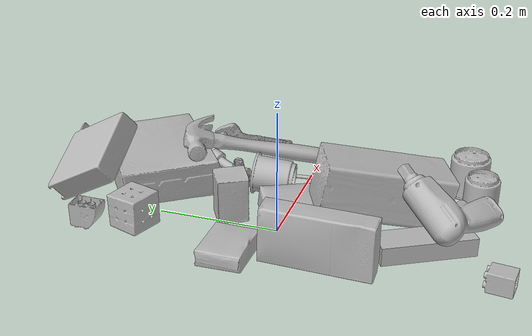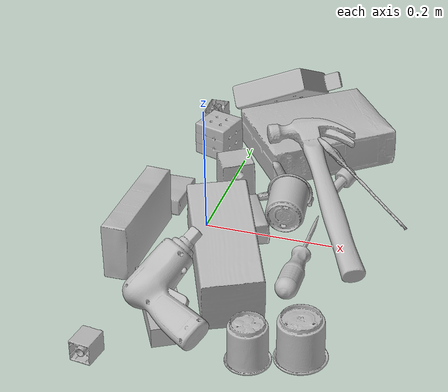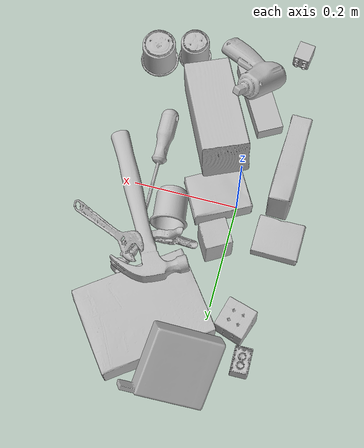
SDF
<sdf version="1.4">
  <world name="default">
    <light name="light1" type="point">
      <pose>0 0 1 0 0 0</pose>
      <diffuse>3 3 3 1</diffuse>
      <specular>3 3 3 1</specular>
    </light>
    <light name="light2" type="point">
      <pose>0 0.5 2 0 0 0</pose>
      <diffuse>1 1 1 1</diffuse>
      <specular>1 1 1 1</specular>
    </light>
    <light name="light3" type="point">
      <pose>0 0.5 2 0 0 0</pose>
      <diffuse>3 3 3 1</diffuse>
      <specular>3 3 3 1</specular>
    </light>
    <scene>
      <ambient>0.7 0.7 0.7</ambient>
    </scene>
    <model name="box21">
      <link name="link_box21">
        <collision name="default">
          <geometry>
            <mesh>
              <uri>model://cracker_box/collision_meshes/collision.obj</uri>
              <scale>1.0 1.0 1.0</scale>
            </mesh>
          </geometry>
          <surface>
            <friction>
              <ode>
                <mu>0.5</mu>
                <mu2>0.5</mu2>
              </ode>
            </friction>
          <contact>
        <ode>
            <max_vel>0</max_vel>
            <min_depth>0.0001</min_depth>
            <kp>1e8</kp>
        </ode>
    </contact></surface>
        </collision>
        <visual name="default">
          <geometry>
            <mesh>
              <uri>model://cracker_box/visual_meshes/visual.dae</uri>
              <scale>1.0 1.0 1.0</scale>
            </mesh>
          </geometry>
        </visual>
        <inertial>
          <mass>2.732837677001953</mass>
          <pose>0.000946416228543967 0.0002543424488976598 -0.0017029533628374338 -0.00031620734042352985 -0.011106490532052917 0.002546795466230165</pose>
          <inertia>
            <ixx>0.0069511193</ixx>
            <iyy>0.011477663</iyy>
            <izz>0.01637968</izz>
            <ixy>0</ixy>
            <ixz>0</ixz>
            <iyz>0</iyz>
          </inertia>
        </inertial>
      </link>
      <pose>0.10934597253799438 0.25313904881477356 0.035531580448150635 3.1371835607265433 -0.016546279699435642 0.6488556892037938</pose>
    </model>
    <model name="box22">
      <link name="link_box22">
        <collision name="default">
          <geometry>
            <mesh>
              <uri>model://jenga/collision_meshes/collision.obj</uri>
              <scale>1.0 1.0 1.0</scale>
            </mesh>
          </geometry>
          <surface>
            <friction>
              <ode>
                <mu>0.5</mu>
                <mu2>0.5</mu2>
              </ode>
            </friction>
          <contact>
        <ode>
            <max_vel>0</max_vel>
            <min_depth>0.0001</min_depth>
            <kp>1e8</kp>
        </ode>
    </contact></surface>
        </collision>
        <visual name="default">
          <geometry>
            <mesh>
              <uri>model://jenga/visual_meshes/visual.dae</uri>
              <scale>1.0 1.0 1.0</scale>
            </mesh>
          </geometry>
        </visual>
        <inertial>
          <mass>0.1563216596841812</mass>
          <pose>-2.502855807051674e-07 -0.00010250010382151231 -4.0923401684267446e-05 0.0 -7.34215461761844e-07 0.0</pose>
          <inertia>
            <ixx>4.3258e-05</ixx>
            <iyy>0.000293115</iyy>
            <izz>0.0003129252</izz>
            <ixy>0</ixy>
            <ixz>0</ixz>
            <iyz>0</iyz>
          </inertia>
        </inertial>
      </link>
      <pose>0.010229085572063923 -0.22850708663463593 0.015000276267528534 3.1415733187282133 7.68523979494409e-07 2.078257957922016</pose>
    </model>
    <model name="box23">
      <link name="link_box23">
        <collision name="default">
          <geometry>
            <mesh>
              <uri>model://pudding_box/collision_meshes/collision.obj</uri>
              <scale>1.0 1.0 1.0</scale>
            </mesh>
          </geometry>
          <surface>
            <friction>
              <ode>
                <mu>0.5</mu>
                <mu2>0.5</mu2>
              </ode>
            </friction>
          <contact>
        <ode>
            <max_vel>0</max_vel>
            <min_depth>0.0001</min_depth>
            <kp>1e8</kp>
        </ode>
    </contact></surface>
        </collision>
        <visual name="default">
          <geometry>
            <mesh>
              <uri>model://pudding_box/visual_meshes/visual.dae</uri>
              <scale>1.0 1.0 1.0</scale>
            </mesh>
          </geometry>
        </visual>
        <inertial>
          <mass>0.32993465662002563</mass>
          <pose>0.0004894821904599667 0.0008067885064519942 -0.0005188827635720372 0.005213102236317791 -0.0066038015122011 0.020079823288174207</pose>
          <inertia>
            <ixx>0.00037297411</ixx>
            <iyy>0.00025093966</iyy>
            <izz>0.0005507938</izz>
            <ixy>0</ixy>
            <ixz>0</ixz>
            <iyz>0</iyz>
          </inertia>
        </inertial>
      </link>
      <pose>0.038948968052864075 -0.010001078248023987 0.01885182224214077 3.12095938431094 -0.03486805333929335 2.0687815458199537</pose>
    </model>
    <model name="cup1">
      <link name="link_cup1">
        <collision name="default">
          <geometry>
            <mesh>
              <uri>model://c_cups/collision_meshes/collision.obj</uri>
              <scale>1.0 1.0 1.0</scale>
            </mesh>
          </geometry>
          <surface>
            <friction>
              <ode>
                <mu>0.5</mu>
                <mu2>0.5</mu2>
              </ode>
            </friction>
          <contact>
        <ode>
            <max_vel>0</max_vel>
            <min_depth>0.0001</min_depth>
            <kp>1e8</kp>
        </ode>
    </contact></surface>
        </collision>
        <visual name="default">
          <geometry>
            <mesh>
              <uri>model://c_cups/visual_meshes/visual.dae</uri>
              <scale>1.0 1.0 1.0</scale>
            </mesh>
          </geometry>
        </visual>
        <inertial>
          <mass>0.05159630998969078</mass>
          <pose>0.0007237254758365452 0.0020153908990323544 -0.001275097718462348 0.3021575981944983 0.01346171900925468 -0.08771841488334552</pose>
          <inertia>
            <ixx>3.8371487e-05</ixx>
            <iyy>3.7693397e-05</iyy>
            <izz>3.3934528e-05</izz>
            <ixy>0</ixy>
            <ixz>0</ixz>
            <iyz>0</iyz>
          </inertia>
        </inertial>
      </link>
      <pose>0.15941059589385986 -0.2951018810272217 0.03345802053809166 -3.141592568880961 -1.1392292025842455e-07 -1.947133022673518</pose>
    </model>
    <model name="cup2">
      <link name="link_cup2">
        <collision name="default">
          <geometry>
            <mesh>
              <uri>model://d_cups/collision_meshes/collision.obj</uri>
              <scale>1.0 1.0 1.0</scale>
            </mesh>
          </geometry>
          <surface>
            <friction>
              <ode>
                <mu>0.5</mu>
                <mu2>0.5</mu2>
              </ode>
            </friction>
          <contact>
        <ode>
            <max_vel>0</max_vel>
            <min_depth>0.0001</min_depth>
            <kp>1e8</kp>
        </ode>
    </contact></surface>
        </collision>
        <visual name="default">
          <geometry>
            <mesh>
              <uri>model://d_cups/visual_meshes/visual.dae</uri>
              <scale>1.0 1.0 1.0</scale>
            </mesh>
          </geometry>
        </visual>
        <inertial>
          <mass>0.029099034145474434</mass>
          <pose>0.0008068051538430154 0.0019117402844130993 -0.0022666510194540024 0.24013101341738077 -0.2470893725106806 0.5942204262094062</pose>
          <inertia>
            <ixx>2.436274e-05</ixx>
            <iyy>2.429223e-05</iyy>
            <izz>2.2052422e-05</izz>
            <ixy>0</ixy>
            <ixz>0</ixz>
            <iyz>0</iyz>
          </inertia>
        </inertial>
      </link>
      <pose>0.11704225093126297 0.0432405062019825 0.03228725865483284 -1.3494957867663953 1.100838372221377 0.3291139826253733</pose>
    </model>
    <model name="box11">
      <link name="link_box11">
        <collision name="default">
          <geometry>
            <mesh>
              <uri>model://sugar_box/collision_meshes/collision.obj</uri>
              <scale>1.0 1.0 1.0</scale>
            </mesh>
          </geometry>
          <surface>
            <friction>
              <ode>
                <mu>0.5</mu>
                <mu2>0.5</mu2>
              </ode>
            </friction>
          <contact>
        <ode>
            <max_vel>0</max_vel>
            <min_depth>0.0001</min_depth>
            <kp>1e8</kp>
        </ode>
    </contact></surface>
        </collision>
        <visual name="default">
          <geometry>
            <mesh>
              <uri>model://sugar_box/visual_meshes/visual.dae</uri>
              <scale>1.0 1.0 1.0</scale>
            </mesh>
          </geometry>
        </visual>
        <inertial>
          <mass>0.6083751916885376</mass>
          <pose>0.0010343727190047503 3.849109634757042e-05 -0.00036364805418998003 -0.00040462662026216373 0.00105066363904409 0.002615379021562279</pose>
          <inertia>
            <ixx>0.0005068966</ixx>
            <iyy>0.0016383935</iyy>
            <izz>0.0019613528</izz>
            <ixy>0</ixy>
            <ixz>0</ixz>
            <iyz>0</iyz>
          </inertia>
        </inertial>
      </link>
      <pose>-0.0772683396935463 -0.08695812523365021 0.04645009711384773 1.5710192556297118 -3.98700991801225e-05 1.5471876856637268</pose>
    </model>
    <model name="box12">
      <link name="link_box12">
        <collision name="default">
          <geometry>
            <mesh>
              <uri>model://wood_block/collision_meshes/collision.obj</uri>
              <scale>1.0 1.0 1.0</scale>
            </mesh>
          </geometry>
          <surface>
            <friction>
              <ode>
                <mu>0.5</mu>
                <mu2>0.5</mu2>
              </ode>
            </friction>
          <contact>
        <ode>
            <max_vel>0</max_vel>
            <min_depth>0.0001</min_depth>
            <kp>1e8</kp>
        </ode>
    </contact></surface>
        </collision>
        <visual name="default">
          <geometry>
            <mesh>
              <uri>model://wood_block/visual_meshes/visual.dae</uri>
              <scale>1.0 1.0 1.0</scale>
            </mesh>
          </geometry>
        </visual>
        <inertial>
          <mass>1.904224157333374</mass>
          <pose>-5.813315510749817e-06 -0.000570809468626976 0.0002640858292579651 -0.05220878944738684 -0.005192694452018099 -0.006861378422653873</pose>
          <inertia>
            <ixx>0.00254814</ixx>
            <iyy>0.008049577</iyy>
            <izz>0.008019466</izz>
            <ixy>0</ixy>
            <ixz>0</ixz>
            <iyz>0</iyz>
          </inertia>
        </inertial>
      </link>
      <pose>0.07907955348491669 -0.1467672437429428 0.06289065629243851 1.5570450810331384 -0.1975035145187137 2.006458277592792</pose>
    </model>
    <model name="box13">
      <link name="link_box13">
        <collision name="default">
          <geometry>
            <mesh>
              <uri>model://gelatin_box/collision_meshes/collision.obj</uri>
              <scale>1.0 1.0 1.0</scale>
            </mesh>
          </geometry>
          <surface>
            <friction>
              <ode>
                <mu>0.5</mu>
                <mu2>0.5</mu2>
              </ode>
            </friction>
          <contact>
        <ode>
            <max_vel>0</max_vel>
            <min_depth>0.0001</min_depth>
            <kp>1e8</kp>
        </ode>
    </contact></surface>
        </collision>
        <visual name="default">
          <geometry>
            <mesh>
              <uri>model://gelatin_box/visual_meshes/visual.dae</uri>
              <scale>1.0 1.0 1.0</scale>
            </mesh>
          </geometry>
        </visual>
        <inertial>
          <mass>0.15982484817504883</mass>
          <pose>0.0004319618456065655 0.00011156871187267825 -0.0003640321083366871 -0.001050372093012012 -0.00475581868936722 0.016440559471878533</pose>
          <inertia>
            <ixx>0.000112823305</ixx>
            <iyy>8.0589096e-05</iyy>
            <izz>0.0001717422</izz>
            <ixy>0</ixy>
            <ixz>0</ixz>
            <iyz>0</iyz>
          </inertia>
        </inertial>
      </link>
      <pose>-0.0907057598233223 0.047671590000391006 0.01516831386834383 0.005597472533504425 -0.0073045828130873635 -1.5929638220119111</pose>
    </model>
    <model name="box14">
      <link name="link_box14">
        <collision name="default">
          <geometry>
            <mesh>
              <uri>model://rubiks_cube/collision_meshes/collision.obj</uri>
              <scale>1.0 1.0 1.0</scale>
            </mesh>
          </geometry>
          <surface>
            <friction>
              <ode>
                <mu>0.5</mu>
                <mu2>0.5</mu2>
              </ode>
            </friction>
          <contact>
        <ode>
            <max_vel>0</max_vel>
            <min_depth>0.0001</min_depth>
            <kp>1e8</kp>
        </ode>
    </contact></surface>
        </collision>
        <visual name="default">
          <geometry>
            <mesh>
              <uri>model://rubiks_cube/visual_meshes/visual.dae</uri>
              <scale>1.0 1.0 1.0</scale>
            </mesh>
          </geometry>
        </visual>
        <inertial>
          <mass>0.19606205821037292</mass>
          <pose>2.6721043468569405e-05 5.256967051536776e-05 -7.264316536748083e-06 -0.05467227514375443 -0.09814085307594407 -0.03445353526761094</pose>
          <inertia>
            <ixx>0.00010833746</ixx>
            <iyy>0.000107832224</iyy>
            <izz>0.00010923522</izz>
            <ixy>0</ixy>
            <ixz>0</ixz>
            <iyz>0</iyz>
          </inertia>
        </inertial>
      </link>
      <pose>-0.051671627908945084 0.22112196683883667 0.028678936883807182 -4.667955954009086e-06 -1.737013126294982e-06 1.2846371186808514</pose>
    </model>
    <model name="cup15">
      <link name="link_cup15">
        <collision name="default">
          <geometry>
            <mesh>
              <uri>model://e_cups/collision_meshes/collision.obj</uri>
              <scale>1.0 1.0 1.0</scale>
            </mesh>
          </geometry>
          <surface>
            <friction>
              <ode>
                <mu>0.5</mu>
                <mu2>0.5</mu2>
              </ode>
            </friction>
          <contact>
        <ode>
            <max_vel>0</max_vel>
            <min_depth>0.0001</min_depth>
            <kp>1e8</kp>
        </ode>
    </contact></surface>
        </collision>
        <visual name="default">
          <geometry>
            <mesh>
              <uri>model://e_cups/visual_meshes/visual.dae</uri>
              <scale>1.0 1.0 1.0</scale>
            </mesh>
          </geometry>
        </visual>
        <inertial>
          <mass>0.09305236488580704</mass>
          <pose>0.0011355740716680884 0.0028797851409763098 -0.003882972989231348 0.6952374393777071 0.08767548394821409 -0.5235242886817723</pose>
          <inertia>
            <ixx>8.204892e-05</ixx>
            <iyy>8.5752865e-05</iyy>
            <izz>7.844823e-05</izz>
            <ixy>0</ixy>
            <ixz>0</ixz>
            <iyz>0</iyz>
          </inertia>
        </inertial>
      </link>
      <pose>0.22589273750782013 -0.26933014392852783 0.03560692444443703 3.1396967411286356 0.008252365635729704 3.0487813599149263</pose>
    </model>
    <model name="toy1">
      <link name="link_toy1">
        <collision name="default">
          <geometry>
            <mesh>
              <uri>model://foam_brick/collision_meshes/collision.obj</uri>
              <scale>1.0 1.0 1.0</scale>
            </mesh>
          </geometry>
          <surface>
            <friction>
              <ode>
                <mu>0.5</mu>
                <mu2>0.5</mu2>
              </ode>
            </friction>
          <contact>
        <ode>
            <max_vel>0</max_vel>
            <min_depth>0.0001</min_depth>
            <kp>1e8</kp>
        </ode>
    </contact></surface>
        </collision>
        <visual name="default">
          <geometry>
            <mesh>
              <uri>model://foam_brick/visual_meshes/visual.dae</uri>
              <scale>1.0 1.0 1.0</scale>
            </mesh>
          </geometry>
        </visual>
        <inertial>
          <mass>0.27397871017456055</mass>
          <pose>-0.0002522472059354186 0.0003458441060502082 -0.00025321010616607964 -0.2940210021807357 0.01727444677850634 -0.0007449878009638903</pose>
          <inertia>
            <ixx>0.00011967903</ixx>
            <iyy>0.00019107372</iyy>
            <izz>0.00019350204</izz>
            <ixy>0</ixy>
            <ixz>0</ixz>
            <iyz>0</iyz>
          </inertia>
        </inertial>
      </link>
      <pose>0.021110376343131065 0.08440710604190826 0.03830830752849579 2.0113512876569857 1.552183491698202 0.9650196538749394</pose>
    </model>
    <model name="toy2">
      <link name="link_toy2">
        <collision name="default">
          <geometry>
            <mesh>
              <uri>model://b_toy_airplane/collision_meshes/collision.obj</uri>
              <scale>1.0 1.0 1.0</scale>
            </mesh>
          </geometry>
          <surface>
            <friction>
              <ode>
                <mu>0.5</mu>
                <mu2>0.5</mu2>
              </ode>
            </friction>
          <contact>
        <ode>
            <max_vel>0</max_vel>
            <min_depth>0.0001</min_depth>
            <kp>1e8</kp>
        </ode>
    </contact></surface>
        </collision>
        <visual name="default">
          <geometry>
            <mesh>
              <uri>model://b_toy_airplane/visual_meshes/visual.dae</uri>
              <scale>1.0 1.0 1.0</scale>
            </mesh>
          </geometry>
        </visual>
        <inertial>
          <mass>0.24932990968227386</mass>
          <pose>0.005081362556666136 0.004015582613646984 0.00954306498169899 -0.04001809188182278 -0.04022184417958596 -0.5601502893643007</pose>
          <inertia>
            <ixx>0.0004628856</ixx>
            <iyy>0.00018501986</iyy>
            <izz>0.00057587575</izz>
            <ixy>0</ixy>
            <ixz>0</ixz>
            <iyz>0</iyz>
          </inertia>
        </inertial>
      </link>
      <pose>0.030488166958093643 -0.25626200437545776 0.054715368896722794 0.20267186774657445 -0.533045589986212 0.9799911544679452</pose>
    </model>
    <model name="toy3">
      <link name="link_toy3">
        <collision name="default">
          <geometry>
            <mesh>
              <uri>model://f_lego_duplo/collision_meshes/collision.obj</uri>
              <scale>1.0 1.0 1.0</scale>
            </mesh>
          </geometry>
          <surface>
            <friction>
              <ode>
                <mu>0.5</mu>
                <mu2>0.5</mu2>
              </ode>
            </friction>
          <contact>
        <ode>
            <max_vel>0</max_vel>
            <min_depth>0.0001</min_depth>
            <kp>1e8</kp>
        </ode>
    </contact></surface>
        </collision>
        <visual name="default">
          <geometry>
            <mesh>
              <uri>model://f_lego_duplo/visual_meshes/visual.dae</uri>
              <scale>1.0 1.0 1.0</scale>
            </mesh>
          </geometry>
        </visual>
        <inertial>
          <mass>0.027739444747567177</mass>
          <pose>2.369416324654594e-05 0.00013393194240052253 0.0018837876850739121 0.02983859902212722 -0.014425048030447486 -0.6756637170693943</pose>
          <inertia>
            <ixx>5.8614983e-06</ixx>
            <iyy>5.913718e-06</iyy>
            <izz>5.0880294e-06</izz>
            <ixy>0</ixy>
            <ixz>0</ixz>
            <iyz>0</iyz>
          </inertia>
        </inertial>
      </link>
      <pose>-0.05276681110262871 -0.343843549489975 0.016207214444875717 1.5789909259482484 0.00014605461545803963 3.01233943823756</pose>
    </model>
    <model name="toy4">
      <link name="link_toy4">
        <collision name="default">
          <geometry>
            <mesh>
              <uri>model://d_toy_airplane/collision_meshes/collision.obj</uri>
              <scale>1.0 1.0 1.0</scale>
            </mesh>
          </geometry>
          <surface>
            <friction>
              <ode>
                <mu>0.5</mu>
                <mu2>0.5</mu2>
              </ode>
            </friction>
          <contact>
        <ode>
            <max_vel>0</max_vel>
            <min_depth>0.0001</min_depth>
            <kp>1e8</kp>
        </ode>
    </contact></surface>
        </collision>
        <visual name="default">
          <geometry>
            <mesh>
              <uri>model://d_toy_airplane/visual_meshes/visual.dae</uri>
              <scale>1.0 1.0 1.0</scale>
            </mesh>
          </geometry>
        </visual>
        <inertial>
          <mass>0.018694162368774414</mass>
          <pose>9.410315396962687e-05 -5.80932610318996e-05 -0.011728095822036266 0.0002670379770250361 0.004678992469792915 0.5194762078456472</pose>
          <inertia>
            <ixx>5.6041463e-06</ixx>
            <iyy>5.6083722e-06</iyy>
            <izz>1.6919282e-06</izz>
            <ixy>0</ixy>
            <ixz>0</ixz>
            <iyz>0</iyz>
          </inertia>
        </inertial>
      </link>
      <pose>0.16986438632011414 0.15166550874710083 0.011408181861042976 1.7958413091757495 0.2301620902163093 -0.3058498392562457</pose>
    </model>
    <model name="toy5">
      <link name="link_toy5">
        <collision name="default">
          <geometry>
            <mesh>
              <uri>model://d_lego_duplo/collision_meshes/collision.obj</uri>
              <scale>1.0 1.0 1.0</scale>
            </mesh>
          </geometry>
          <surface>
            <friction>
              <ode>
                <mu>0.5</mu>
                <mu2>0.5</mu2>
              </ode>
            </friction>
          <contact>
        <ode>
            <max_vel>0</max_vel>
            <min_depth>0.0001</min_depth>
            <kp>1e8</kp>
        </ode>
    </contact></surface>
        </collision>
        <visual name="default">
          <geometry>
            <mesh>
              <uri>model://d_lego_duplo/visual_meshes/visual.dae</uri>
              <scale>1.0 1.0 1.0</scale>
            </mesh>
          </geometry>
        </visual>
        <inertial>
          <mass>0.04560890793800354</mass>
          <pose>0.0028305635787546635 0.00016366137424483895 0.0008589806966483593 0.08010848326521293 -0.38355231288211744 0.0010296590748680565</pose>
          <inertia>
            <ixx>8.829212e-06</ixx>
            <iyy>1.253105e-05</iyy>
            <izz>1.2084434e-05</izz>
            <ixy>0</ixy>
            <ixz>0</ixz>
            <iyz>0</iyz>
          </inertia>
        </inertial>
      </link>
      <pose>-0.07882903516292572 0.28870517015457153 0.021658314391970634 3.1298308866875497 -0.018641293339612005 1.5887733090631826</pose>
    </model>
    <model name="toy6">
      <link name="link_toy6">
        <collision name="default">
          <geometry>
            <mesh>
              <uri>model://nine_hole_peg_test/collision_meshes/collision.obj</uri>
              <scale>1.0 1.0 1.0</scale>
            </mesh>
          </geometry>
          <surface>
            <friction>
              <ode>
                <mu>0.5</mu>
                <mu2>0.5</mu2>
              </ode>
            </friction>
          <contact>
        <ode>
            <max_vel>0</max_vel>
            <min_depth>0.0001</min_depth>
            <kp>1e8</kp>
        </ode>
    </contact></surface>
        </collision>
        <visual name="default">
          <geometry>
            <mesh>
              <uri>model://nine_hole_peg_test/visual_meshes/visual.dae</uri>
              <scale>1.0 1.0 1.0</scale>
            </mesh>
          </geometry>
        </visual>
        <inertial>
          <mass>0.9848376512527466</mass>
          <pose>-0.004617386031895876 -0.009647614322602749 2.646068787726108e-05 -0.0014666785927196467 0.0007194180015025765 -0.6342414580933873</pose>
          <inertia>
            <ixx>0.0015399556</ixx>
            <iyy>0.0014378404</iyy>
            <izz>0.0026984566</izz>
            <ixy>0</ixy>
            <ixz>0</ixz>
            <iyz>0</iyz>
          </inertia>
        </inertial>
      </link>
      <pose>0.03404056280851364 0.3367118537425995 0.06985531747341156 2.6933358078243557 0.5064650068450117 1.4271122613858513</pose>
    </model>
    <model name="hardware1">
      <link name="link_hardware1">
        <collision name="default">
          <geometry>
            <mesh>
              <uri>model://hammer/collision_meshes/collision.obj</uri>
              <scale>1.0 1.0 1.0</scale>
            </mesh>
          </geometry>
          <surface>
            <friction>
              <ode>
                <mu>0.5</mu>
                <mu2>0.5</mu2>
              </ode>
            </friction>
          <contact>
        <ode>
            <max_vel>0</max_vel>
            <min_depth>0.0001</min_depth>
            <kp>1e8</kp>
        </ode>
    </contact></surface>
        </collision>
        <visual name="default">
          <geometry>
            <mesh>
              <uri>model://hammer/visual_meshes/visual.dae</uri>
              <scale>1.0 1.0 1.0</scale>
            </mesh>
          </geometry>
        </visual>
        <inertial>
          <mass>0.19812075793743134</mass>
          <pose>0.009415780194103718 -0.011892358772456646 -0.00012350631004665047 0.023155553199567438 -0.004792165144826806 -0.012760319769687977</pose>
          <inertia>
            <ixx>8.4865314e-05</ixx>
            <iyy>0.0022996028</iyy>
            <izz>0.0023654876</izz>
            <ixy>0</ixy>
            <ixz>0</ixz>
            <iyz>0</iyz>
          </inertia>
        </inertial>
      </link>
      <pose>0.18141913414001465 0.07242723554372787 0.05556124448776245 3.087644851360051 -0.24027233523638425 2.071871386770758</pose>
    </model>
    <model name="hardware2">
      <link name="link_hardware2">
        <collision name="default">
          <geometry>
            <mesh>
              <uri>model://medium_clamp/collision_meshes/collision.obj</uri>
              <scale>1.0 1.0 1.0</scale>
            </mesh>
          </geometry>
          <surface>
            <friction>
              <ode>
                <mu>0.5</mu>
                <mu2>0.5</mu2>
              </ode>
            </friction>
          <contact>
        <ode>
            <max_vel>0</max_vel>
            <min_depth>0.0001</min_depth>
            <kp>1e8</kp>
        </ode>
    </contact></surface>
        </collision>
        <visual name="default">
          <geometry>
            <mesh>
              <uri>model://medium_clamp/visual_meshes/visual.dae</uri>
              <scale>1.0 1.0 1.0</scale>
            </mesh>
          </geometry>
        </visual>
        <inertial>
          <mass>0.022759946063160896</mass>
          <pose>0.005390991922467947 0.00039532387745566666 -0.0001222159044118598 -0.0012269199415174078 0.0025845019151957355 0.03820777718195871</pose>
          <inertia>
            <ixx>6.200628e-06</ixx>
            <iyy>9.023669e-06</iyy>
            <izz>1.3899154e-05</izz>
            <ixy>0</ixy>
            <ixz>0</ixz>
            <iyz>0</iyz>
          </inertia>
        </inertial>
      </link>
      <pose>0.1007203534245491 0.0960310772061348 0.02436237968504429 1.576579512285782 0.3934693514360613 0.05436062419180268</pose>
    </model>
    <model name="hardware3">
      <link name="link_hardware3">
        <collision name="default">
          <geometry>
            <mesh>
              <uri>model://flat_screwdriver/collision_meshes/collision.obj</uri>
              <scale>1.0 1.0 1.0</scale>
            </mesh>
          </geometry>
          <surface>
            <friction>
              <ode>
                <mu>0.5</mu>
                <mu2>0.5</mu2>
              </ode>
            </friction>
          <contact>
        <ode>
            <max_vel>0</max_vel>
            <min_depth>0.0001</min_depth>
            <kp>1e8</kp>
        </ode>
    </contact></surface>
        </collision>
        <visual name="default">
          <geometry>
            <mesh>
              <uri>model://flat_screwdriver/visual_meshes/visual.dae</uri>
              <scale>1.0 1.0 1.0</scale>
            </mesh>
          </geometry>
        </visual>
        <inertial>
          <mass>0.09131896495819092</mass>
          <pose>-0.0489187091588974 -0.0006576800951734185 -0.0006140916375443339 -0.5615616021105532 -0.003233725851923771 0.0069822762955213</pose>
          <inertia>
            <ixx>1.0789267e-05</ixx>
            <iyy>0.00013697217</iyy>
            <izz>0.00013690875</izz>
            <ixy>0</ixy>
            <ixz>0</ixz>
            <iyz>0</iyz>
          </inertia>
        </inertial>
      </link>
      <pose>0.16749683022499084 -0.053456686437129974 0.01521080732345581 1.7961467678484233 0.03882214705573109 1.6071175889551668</pose>
    </model>
    <model name="hardware4">
      <link name="link_hardware4">
        <collision name="default">
          <geometry>
            <mesh>
              <uri>model://adjustable_wrench/collision_meshes/collision.obj</uri>
              <scale>1.0 1.0 1.0</scale>
            </mesh>
          </geometry>
          <surface>
            <friction>
              <ode>
                <mu>0.5</mu>
                <mu2>0.5</mu2>
              </ode>
            </friction>
          <contact>
        <ode>
            <max_vel>0</max_vel>
            <min_depth>0.0001</min_depth>
            <kp>1e8</kp>
        </ode>
    </contact></surface>
        </collision>
        <visual name="default">
          <geometry>
            <mesh>
              <uri>model://adjustable_wrench/visual_meshes/visual.dae</uri>
              <scale>1.0 1.0 1.0</scale>
            </mesh>
          </geometry>
        </visual>
        <inertial>
          <mass>0.023054517805576324</mass>
          <pose>0.03740980476140976 -0.0028968877159059048 -0.0011149226920679212 -0.01447335734168526 0.006656027895675122 -0.010954173130845575</pose>
          <inertia>
            <ixx>4.7184403e-06</ixx>
            <iyy>5.5223813e-05</iyy>
            <izz>5.969163e-05</izz>
            <ixy>0</ixy>
            <ixz>0</ixz>
            <iyz>0</iyz>
          </inertia>
        </inertial>
      </link>
      <pose>0.2143104523420334 0.11844755709171295 0.04623580351471901 -2.3198542128226394 -0.43110507873330733 2.6615203762719277</pose>
    </model>
  <physics type="ode">
      <max_contacts>50</max_contacts>
      <ode>
        <solver>
          <type>quick</type>
          <iters>75</iters>
        </solver>
        <constraints>
          <contact_max_correcting_vel>0</contact_max_correcting_vel>
          <contact_surface_layer>0</contact_surface_layer>
        </constraints>
      </ode>
    </physics></world>
</sdf>
